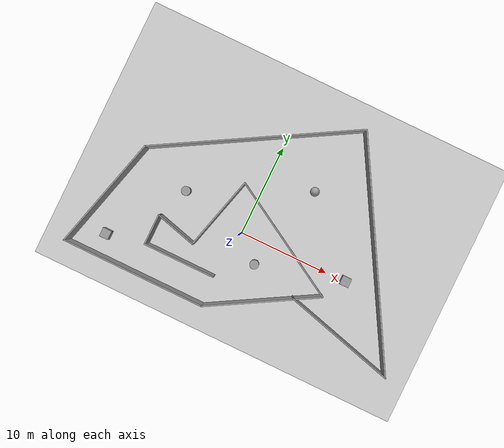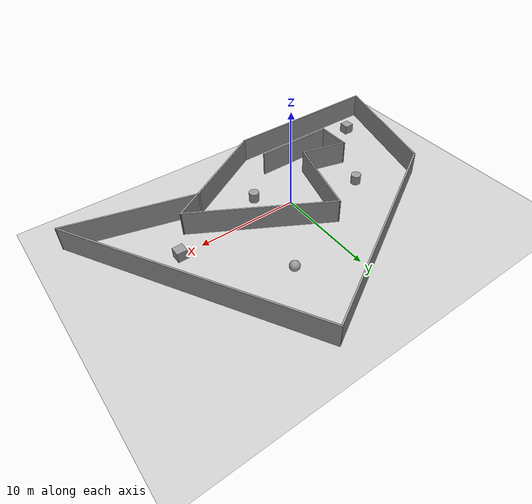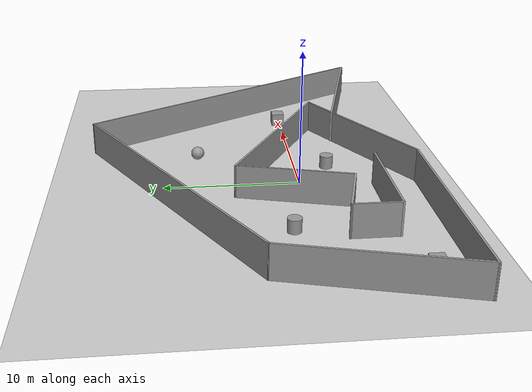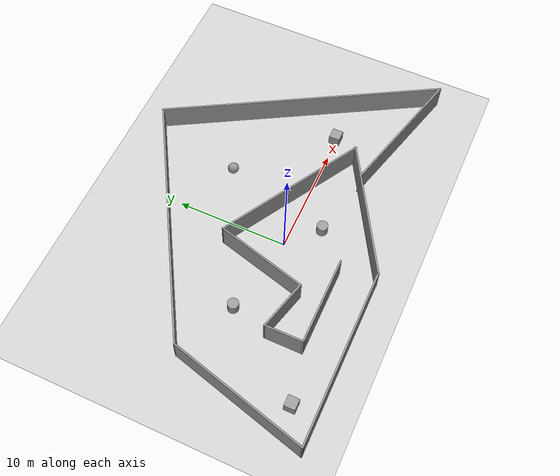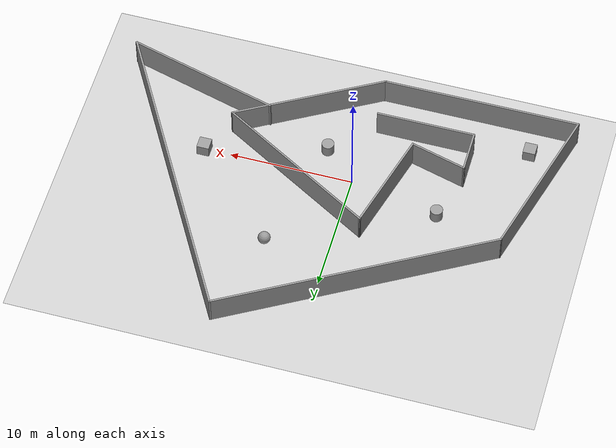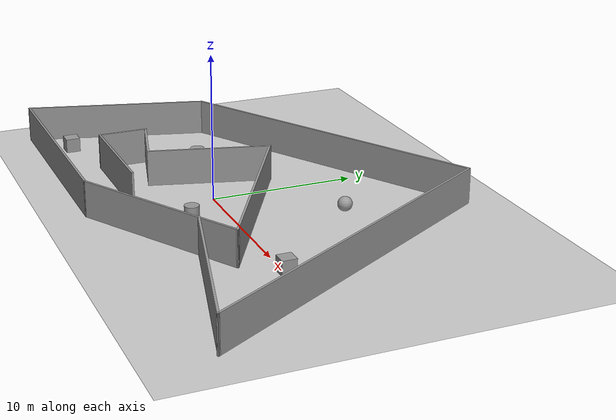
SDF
<sdf version="1.7">
 <world name="default">
  <light name="sun" type="directional">
   <pose>0 0 10 0 -0 0</pose>
   <diffuse>0.8 0.8 0.8 1</diffuse>
   <specular>0.2 0.2 0.2 1</specular>
   <attenuation>
    <range>1000</range>
    <constant>0.9</constant>
    <linear>0.01</linear>
    <quadratic>0.001</quadratic>
   </attenuation>
   <direction>-0.5 0.1 -0.9</direction>
   <spot><inner_angle>0</inner_angle><outer_angle>0</outer_angle><falloff>0</falloff></spot>
  </light>
  <model name="ground_plane">
   <static>1</static>
   <link name="link">
    <collision name="collision">
     <geometry><plane><normal>0 0 1</normal><size>100 100</size></plane></geometry>
     <surface>
      <contact><collide_bitmask>65535</collide_bitmask></contact>
      <friction><ode><mu>100</mu><mu2>50</mu2></ode></friction>
     </surface>
    </collision>
    <visual name="visual">
     <cast_shadows>0</cast_shadows>
     <geometry><plane><normal>0 0 1</normal><size>100 100</size></plane></geometry>
     <material>
      <script><uri>file://media/materials/scripts/gazebo.material</uri><name>Gazebo/Grey</name></script>
     </material>
    </visual>
   </link>
  </model>
  <gravity>0 0 -9.8</gravity>
  <magnetic_field>6e-06 2.3e-05 -4.2e-05</magnetic_field>
  <atmosphere type="adiabatic"/>
  <physics type="ode">
   <max_step_size>0.001</max_step_size>
   <real_time_factor>1</real_time_factor>
   <real_time_update_rate>1000</real_time_update_rate>
  </physics>
  <scene><ambient>0.4 0.4 0.4 1</ambient><background>0.7 0.7 0.7 1</background><shadows>1</shadows></scene>
  <spherical_coordinates>
   <surface_model>EARTH_WGS84</surface_model>
   <latitude_deg>0</latitude_deg>
   <longitude_deg>0</longitude_deg>
   <elevation>0</elevation>
   <heading_deg>0</heading_deg>
  </spherical_coordinates>
  <model name="house">
   <pose>1.87843 3.38176 0 0 -0 0</pose>
   <link name="Wall_0">
    <collision name="Wall_0_Collision">
     <geometry><box><size>8 0.15 2.5</size></box></geometry>
     <pose>0 0 1.25 0 -0 0</pose>
    </collision>
    <visual name="Wall_0_Visual">
     <pose>0 0 1.25 0 -0 0</pose>
     <geometry><box><size>8 0.15 2.5</size></box></geometry>
     <material>
      <script><uri>file://media/materials/scripts/gazebo.material</uri><name>Gazebo/Grey</name></script>
      <ambient>1 1 1 1</ambient>
     </material>
     <meta><layer>0</layer></meta>
    </visual>
    <pose>-6.47825 -8.73099 0 0 -0 3.14159</pose>
   </link>
   <link name="Wall_1">
    <collision name="Wall_1_Collision">
     <geometry><box><size>3.5 0.15 2.5</size></box></geometry>
     <pose>0 0 1.25 0 -0 0</pose>
    </collision>
    <visual name="Wall_1_Visual">
     <pose>0 0 1.25 0 -0 0</pose>
     <geometry><box><size>3.5 0.15 2.5</size></box></geometry>
     <material>
      <script><uri>file://media/materials/scripts/gazebo.material</uri><name>Gazebo/Grey</name></script>
      <ambient>1 1 1 1</ambient>
     </material>
     <meta><layer>0</layer></meta>
    </visual>
    <pose>-10.4032 -7.05599 0 0 -0 1.5708</pose>
   </link>
   <link name="Wall_10">
    <collision name="Wall_10_Collision">
     <geometry><box><size>12.75 0.15 2.5</size></box></geometry>
     <pose>0 0 1.25 0 -0 0</pose>
    </collision>
    <visual name="Wall_10_Visual">
     <pose>0 0 1.25 0 -0 0</pose>
     <geometry><box><size>12.75 0.15 2.5</size></box></geometry>
     <material>
      <script><uri>file://media/materials/scripts/gazebo.material</uri><name>Gazebo/Grey</name></script>
      <ambient>1 1 1 1</ambient>
     </material>
     <meta><layer>0</layer></meta>
    </visual>
    <pose>12.0374 -8.77512 0 0 -0 2.87979</pose>
   </link>
   <link name="Wall_2">
    <collision name="Wall_2_Collision">
     <geometry><box><size>4.75 0.15 2.5</size></box></geometry>
     <pose>0 0 1.25 0 -0 0</pose>
    </collision>
    <visual name="Wall_2_Visual">
     <pose>0 0 1.25 0 -0 0</pose>
     <geometry><box><size>4.75 0.15 2.5</size></box></geometry>
     <material>
      <script><uri>file://media/materials/scripts/gazebo.material</uri><name>Gazebo/Grey</name></script>
      <ambient>1 1 1 1</ambient>
     </material>
     <meta><layer>0</layer></meta>
    </visual>
    <pose>-8.18162 -5.97627 0 0 -0 -0.261799</pose>
   </link>
   <link name="Wall_3">
    <collision name="Wall_3_Collision">
     <geometry><box><size>8.5 0.15 2.5</size></box></geometry>
     <pose>0 0 1.25 0 -0 0</pose>
    </collision>
    <visual name="Wall_3_Visual">
     <pose>0 0 1.25 0 -0 0</pose>
     <geometry><box><size>8.5 0.15 2.5</size></box></geometry>
     <material>
      <script><uri>file://media/materials/scripts/gazebo.material</uri><name>Gazebo/Grey</name></script>
      <ambient>1 1 1 1</ambient>
     </material>
     <meta><layer>0</layer></meta>
    </visual>
    <pose>-4.87942 -2.53881 0 0 -0 1.309</pose>
   </link>
   <link name="Wall_4">
    <collision name="Wall_4_Collision">
     <geometry><box><size>14.5 0.15 2.5</size></box></geometry>
     <pose>0 0 1.25 0 -0 0</pose>
    </collision>
    <visual name="Wall_4_Visual">
     <pose>0 0 1.25 0 -0 0</pose>
     <geometry><box><size>14.5 0.15 2.5</size></box></geometry>
     <material>
      <script><uri>file://media/materials/scripts/gazebo.material</uri><name>Gazebo/Grey</name></script>
      <ambient>1 1 1 1</ambient>
     </material>
     <meta><layer>0</layer></meta>
    </visual>
    <pose>2.41488 -2.09357 0 0 -0 -0.523599</pose>
   </link>
   <link name="Wall_5">
    <collision name="Wall_5_Collision">
     <geometry><box><size>12.75 0.15 2.5</size></box></geometry>
     <pose>0 0 1.25 0 -0 0</pose>
    </collision>
    <visual name="Wall_5_Visual">
     <pose>0 0 1.25 0 -0 0</pose>
     <geometry><box><size>12.75 0.15 2.5</size></box></geometry>
     <material>
      <script><uri>file://media/materials/scripts/gazebo.material</uri><name>Gazebo/Grey</name></script>
      <ambient>1 1 1 1</ambient>
     </material>
     <meta><layer>0</layer></meta>
    </visual>
    <pose>3.17266 -8.83107 0 0 -0 -2.61799</pose>
   </link>
   <link name="Wall_6">
    <collision name="Wall_6_Collision">
     <geometry><box><size>16 0.15 2.5</size></box></geometry>
     <pose>0 0 1.25 0 -0 0</pose>
    </collision>
    <visual name="Wall_6_Visual">
     <pose>0 0 1.25 0 -0 0</pose>
     <geometry><box><size>16 0.15 2.5</size></box></geometry>
     <material>
      <script><uri>file://media/materials/scripts/gazebo.material</uri><name>Gazebo/Grey</name></script>
      <ambient>1 1 1 1</ambient>
     </material>
     <meta><layer>0</layer></meta>
    </visual>
    <pose>-10.2083 -11.9811 0 0 -0 3.14159</pose>
   </link>
   <link name="Wall_7">
    <collision name="Wall_7_Collision">
     <geometry><box><size>13 0.15 2.5</size></box></geometry>
     <pose>0 0 1.25 0 -0 0</pose>
    </collision>
    <visual name="Wall_7_Visual">
     <pose>0 0 1.25 0 -0 0</pose>
     <geometry><box><size>13 0.15 2.5</size></box></geometry>
     <material>
      <script><uri>file://media/materials/scripts/gazebo.material</uri><name>Gazebo/Grey</name></script>
      <ambient>1 1 1 1</ambient>
     </material>
     <meta><layer>0</layer></meta>
    </visual>
    <pose>-16.4704 -5.775 0 0 -0 1.309</pose>
   </link>
   <link name="Wall_8">
    <collision name="Wall_8_Collision">
     <geometry><box><size>23.25 0.15 2.5</size></box></geometry>
     <pose>0 0 1.25 0 -0 0</pose>
    </collision>
    <visual name="Wall_8_Visual">
     <pose>0 0 1.25 0 -0 0</pose>
     <geometry><box><size>23.25 0.15 2.5</size></box></geometry>
     <material>
      <script><uri>file://media/materials/scripts/gazebo.material</uri><name>Gazebo/Grey</name></script>
      <ambient>1 1 1 1</ambient>
     </material>
     <meta><layer>0</layer></meta>
    </visual>
    <pose>-4.80489 6.20607 0 0 -0 0.523599</pose>
   </link>
   <link name="Wall_9">
    <collision name="Wall_9_Collision">
     <geometry><box><size>26 0.15 2.5</size></box></geometry>
     <pose>0 0 1.25 0 -0 0</pose>
    </collision>
    <visual name="Wall_9_Visual">
     <pose>0 0 1.25 0 -0 0</pose>
     <geometry><box><size>26 0.15 2.5</size></box></geometry>
     <material>
      <script><uri>file://media/materials/scripts/gazebo.material</uri><name>Gazebo/Grey</name></script>
      <ambient>1 1 1 1</ambient>
     </material>
     <meta><layer>0</layer></meta>
    </visual>
    <pose>11.6602 0.787695 0 0 -0 -1.0472</pose>
   </link>
   <static>1</static>
  </model>
  <model name="unit_cylinder">
   <pose>2.65425 -2.44333 0.499992 -3e-06 -4e-06 -0</pose>
   <link name="link">
    <inertial>
     <mass>1</mass>
     <inertia><ixx>0.145833</ixx><ixy>0</ixy><ixz>0</ixz><iyy>0.145833</iyy><iyz>0</iyz><izz>0.125</izz></inertia>
    </inertial>
    <collision name="collision">
     <geometry><cylinder><radius>0.5</radius><length>1</length></cylinder></geometry>
    </collision>
    <visual name="visual">
     <geometry><cylinder><radius>0.5</radius><length>1</length></cylinder></geometry>
     <material>
      <script><name>Gazebo/Grey</name><uri>file://media/materials/scripts/gazebo.material</uri></script>
     </material>
    </visual>
   </link>
  </model>
  <model name="unit_cylinder_0">
   <pose>-7.25498 1.43718 0.499993 -3e-06 -3e-06 0</pose>
   <link name="link">
    <inertial>
     <mass>1</mass>
     <inertia><ixx>0.145833</ixx><ixy>0</ixy><ixz>0</ixz><iyy>0.145833</iyy><iyz>0</iyz><izz>0.125</izz></inertia>
    </inertial>
    <collision name="collision">
     <geometry><cylinder><radius>0.5</radius><length>1</length></cylinder></geometry>
    </collision>
    <visual name="visual">
     <geometry><cylinder><radius>0.5</radius><length>1</length></cylinder></geometry>
     <material>
      <script><name>Gazebo/Grey</name><uri>file://media/materials/scripts/gazebo.material</uri></script>
     </material>
    </visual>
   </link>
  </model>
  <model name="unit_sphere">
   <pose>5.11034 7.30642 0.5 0 -0 0</pose>
   <link name="link">
    <inertial>
     <mass>1</mass>
     <inertia><ixx>0.1</ixx><ixy>0</ixy><ixz>0</ixz><iyy>0.1</iyy><iyz>0</iyz><izz>0.1</izz></inertia>
    </inertial>
    <collision name="collision"><geometry><sphere><radius>0.5</radius></sphere></geometry></collision>
    <visual name="visual">
     <geometry><sphere><radius>0.5</radius></sphere></geometry>
     <material>
      <script><name>Gazebo/Grey</name><uri>file://media/materials/scripts/gazebo.material</uri></script>
     </material>
    </visual>
   </link>
  </model>
  <model name="unit_box">
   <pose>12.1618 0.140921 0.499995 -1e-05 -0 0</pose>
   <link name="link">
    <inertial>
     <mass>1</mass>
     <inertia>
      <ixx>0.166667</ixx>
      <ixy>0</ixy>
      <ixz>0</ixz>
      <iyy>0.166667</iyy>
      <iyz>0</iyz>
      <izz>0.166667</izz>
     </inertia>
    </inertial>
    <collision name="collision"><geometry><box><size>1 1 1</size></box></geometry></collision>
    <visual name="visual">
     <geometry><box><size>1 1 1</size></box></geometry>
     <material>
      <script><name>Gazebo/Grey</name><uri>file://media/materials/scripts/gazebo.material</uri></script>
     </material>
    </visual>
   </link>
  </model>
  <model name="unit_box_0">
   <pose>-12.9525 -6.34145 0.5 0 -0 0</pose>
   <link name="link">
    <inertial>
     <mass>1</mass>
     <inertia>
      <ixx>0.166667</ixx>
      <ixy>0</ixy>
      <ixz>0</ixz>
      <iyy>0.166667</iyy>
      <iyz>0</iyz>
      <izz>0.166667</izz>
     </inertia>
    </inertial>
    <collision name="collision"><geometry><box><size>1 1 1</size></box></geometry></collision>
    <visual name="visual">
     <geometry><box><size>1 1 1</size></box></geometry>
     <material>
      <script><name>Gazebo/Grey</name><uri>file://media/materials/scripts/gazebo.material</uri></script>
     </material>
    </visual>
   </link>
  </model>
 </world>
</sdf>
